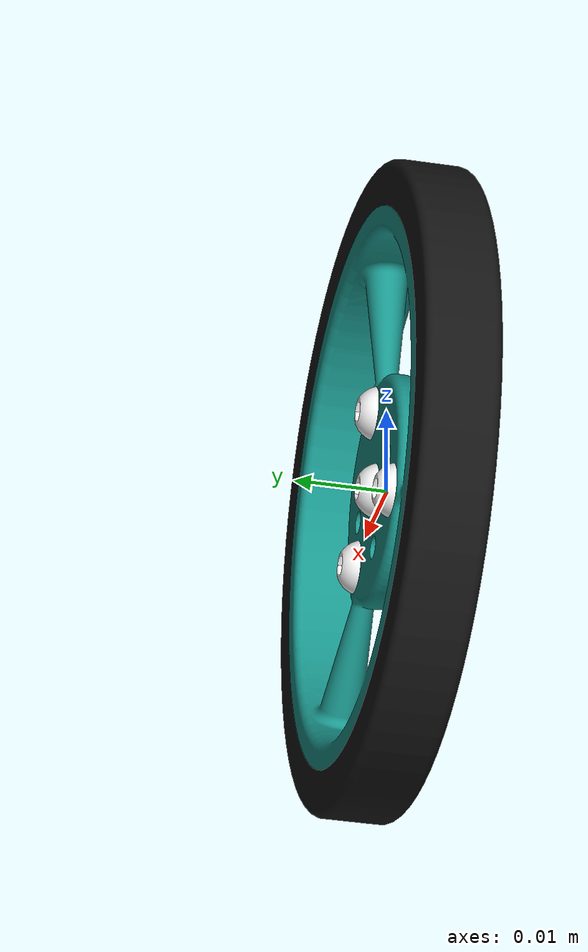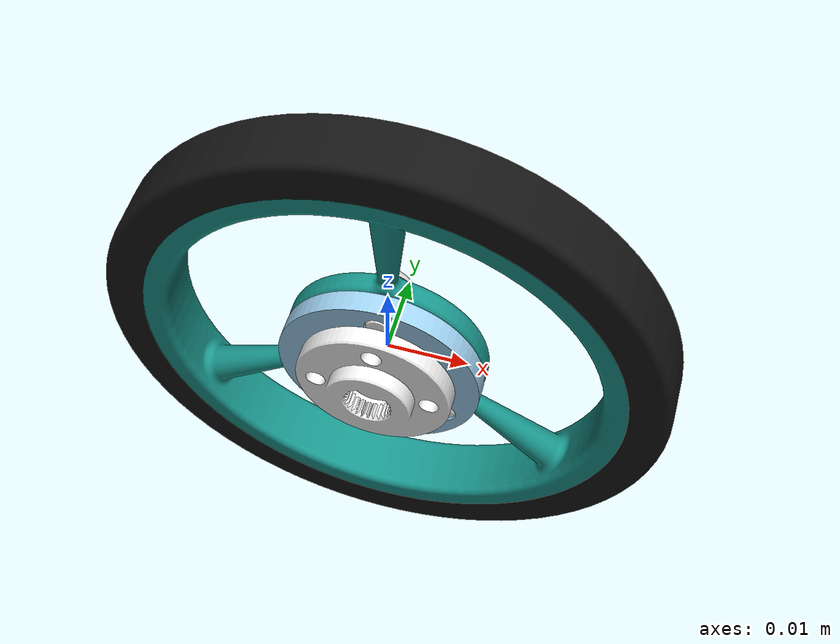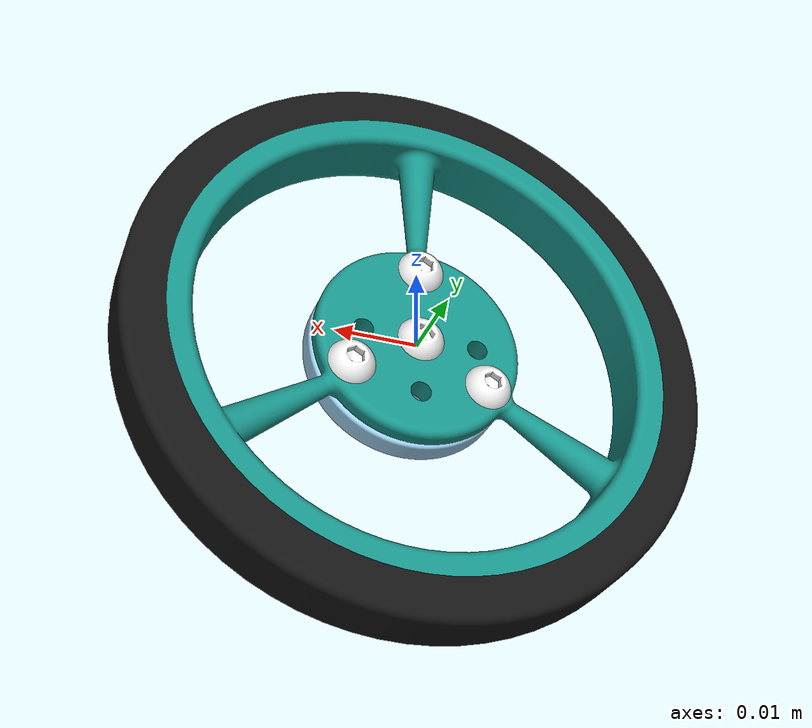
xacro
<?xml version="1.0" ?>
<robot xmlns:xacro="http://www.ros.org/wiki/xacro">

    <xacro:property name="wheel_left_set_m" value="0.0258312" />
    <xacro:property name="wheel_left_set_o_xyz" value="0 -0.0025 0" />
    <xacro:property name="wheel_left_set_o_rpy" value="${pi/2} 0 0" />
    xacro:<xacro:property name="wheel_left_set_h" value="0.0130" />

    <xacro:property name="wheel_left_d" value="0.070" />
    <xacro:property name="wheel_left_r" value="${wheel_left_d / 2}" />
    <xacro:property name="wheel_left_o_xyz" value="0 0 0" />
    <xacro:property name="wheel_left_o_rpy" value="0 0 0" />

  <!-- Link wheel_left -->
  <link name="wheel_left">

    <xacro:cylinder_inertia m="${wheel_left_set_m}" r="${wheel_left_r}" h="${wheel_left_set_h}" o_xyz="${wheel_left_set_o_xyz}" o_rpy="${wheel_left_set_o_rpy}"/>

    <collision>
      <origin xyz="${wheel_left_o_xyz}" rpy="${wheel_left_o_rpy}"/>
      <geometry>
        <sphere radius="${wheel_left_r}"/>
      </geometry>
    </collision>

    <!-- Part 25t_servo_horn_l -->
    <visual>
      <origin xyz="0 -0.00699 0" rpy="0 0 0"/>
      <geometry>
        <mesh filename="package://gizmo_description/meshes/25t_servo_horn_l.stl"/>
      </geometry>
      <material name="25t_servo_horn_l_material">
        <color rgba="0.960784 0.960784 0.964706 1"/>
      </material>
    </visual>

    <!-- Part servo_horn_adapter_wheel70mm__l -->
    <visual>
      <origin xyz="0 -0.0045 0" rpy="0 0 0"/>
      <geometry>
        <mesh filename="package://gizmo_description/meshes/servo_horn_adapter_wheel70mm__l.stl"/>
      </geometry>
      <material name="servo_horn_adapter_wheel70mm__l_material">
        <color rgba="0.615686 0.811765 0.929412 1"/>
      </material>
    </visual>

    <!-- Part rim -->
    <visual>
      <origin xyz="0 0 0" rpy="0 0 0"/>
      <geometry>
        <mesh filename="package://gizmo_description/meshes/rim.stl"/>
      </geometry>
      <material name="rim_material">
        <color rgba="0.0941176 0.580392 0.545098 1"/>
      </material>
    </visual>

    <!-- Part tire -->
    <visual>
      <origin xyz="0 0 0" rpy="0 0 0"/>
      <geometry>
        <mesh filename="package://gizmo_description/meshes/tire.stl"/>
      </geometry>
      <material name="tire_material">
        <color rgba="0.0784314 0.0784314 0.0784314 1"/>
      </material>
    </visual>

    <!-- Part bn_1593_1348663_hexagon_socket_button_head_screw_m3x6_15 -->
    <visual>
      <origin xyz="-0.00824889 0.0015 -0.0047625" rpy="${pi/2} 0 -${pi/2}"/>
      <geometry>
        <mesh filename="package://gizmo_description/meshes/bn_1593_1348663_hexagon_socket_button_head_screw_m3x6.stl"/>
      </geometry>
      <material name="bn_1593_1348663_hexagon_socket_button_head_screw_m3x6_15_material">
        <color rgba="0.941176 0.941176 0.941176 1"/>
      </material>
    </visual>

    <!-- Part bn_1593_1348663_hexagon_socket_button_head_screw_m3x6_16 -->
    <visual>
      <origin xyz="0 0.0015 0.009525" rpy="${pi/2} 0 -${pi/2}"/>
      <geometry>
        <mesh filename="package://gizmo_description/meshes/bn_1593_1348663_hexagon_socket_button_head_screw_m3x6.stl"/>
      </geometry>
      <material name="bn_1593_1348663_hexagon_socket_button_head_screw_m3x6_16_material">
        <color rgba="0.941176 0.941176 0.941176 1"/>
      </material>
    </visual>

    <!-- Part bn_1593_1348663_hexagon_socket_button_head_screw_m3x6_17 -->
    <visual>
      <origin xyz="0.00824889 0.0015 -0.0047625" rpy="${pi/2} 0 -${pi/2}"/>
      <geometry>
        <mesh filename="package://gizmo_description/meshes/bn_1593_1348663_hexagon_socket_button_head_screw_m3x6.stl"/>
      </geometry>
      <material name="bn_1593_1348663_hexagon_socket_button_head_screw_m3x6_17_material">
        <color rgba="0.941176 0.941176 0.941176 1"/>
      </material>
    </visual>

    <!-- Part bn_1593_1348663_hexagon_socket_button_head_screw_m3x6_18 -->
    <visual>
      <origin xyz="0 0.0015 0" rpy="${pi} 0 -${pi/2}"/>
      <geometry>
        <mesh filename="package://gizmo_description/meshes/bn_1593_1348663_hexagon_socket_button_head_screw_m3x6.stl"/>
      </geometry>
      <material name="bn_1593_1348663_hexagon_socket_button_head_screw_m3x6_18_material">
        <color rgba="0.941176 0.941176 0.941176 1"/>
      </material>
    </visual>

  </link>

</robot>
